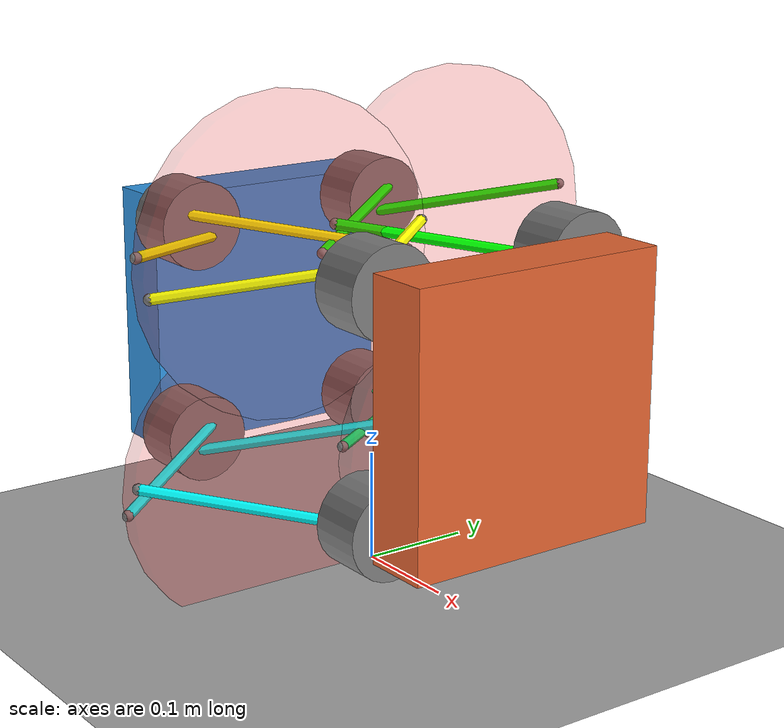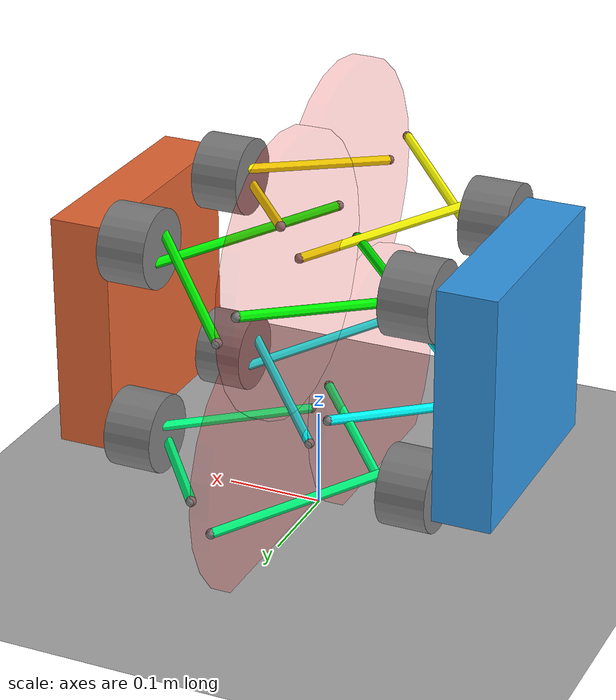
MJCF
<mujoco model="actuatorGroups">
    <compiler angle="radian" />
    <option timestep="0.001" actuatorgroupdisable="0 1 2" />

    <asset>
        <texture name="grid" type="2d" builtin="checker" width="300" height="300"
             rgb1="0.8 0.8 0.8" rgb2="0.5 0.5 0.5" mark="edge" markrgb="0.2 0.2 0.2"/>
        <material name="gridmat" texture="grid" texrepeat="5 5" reflectance="0"/>
    </asset>

    <worldbody>
        <light name="light_front" pos="0 -5 0" dir="0 1 0" directional="true" diffuse=".5 .5 .5"/>
        <light name="light_back" pos="0 5 0" dir="0 -1 0" directional="true" diffuse=".5 .5 .5"/>
        <light name="light_right" pos="5 0 0" dir="-1 0 0" directional="true" diffuse=".5 .5 .5"/>
        <light name="light_left" pos="-5 0 0" dir="1 0 0" directional="true" diffuse=".5 .5 .5"/>

        <geom name="floor" type="plane" size="10 10 0.1" material="gridmat"/>

        <!-- Block A -->
        <body name="block_a" pos="-0.2 0 0.2">
            <freejoint/>
            <inertial pos="0.04 0 0" mass="2.4" diaginertia="0.001 0.01 0.01"/>
            <geom type="box" size="0.03 0.12 0.12" mass="2.4" friction="0.2 0.02 0.01" rgba="0.2 0.6 0.9 1"/>

            <!-- Cylinder 1A -->
            <body name="cylinder1a" pos="0.03 0.10 0.10">
                <inertial pos="0.035 0 0" mass="0.1" diaginertia="0.0001 0.0002 0.0002"/>
                <joint name="cylinder1a_hinge" type="hinge" axis="1 0 0" limited="true" range="0 3.14"/>
                <geom name="cylinder1a_con" type="cylinder" fromto="0 0 0 0.05 0 0" size="0.04" />

                <site name="siteM1a1" pos="0.03 0.03 0.015"/>
                <site name="siteM1a2" pos="0.03 -0.03 -0.015"/>
            </body>

            <!-- Disc 1B -->
            <body name="disc1b" pos="0.175 0.10 0.10">
                <inertial pos="0.025 0 0" mass="0.1" diaginertia="0.0001 0.000225 0.000225"/>
                <geom name="disc1b_con" type="cylinder" fromto="0 0 0 0.02 0 0" size="0.14"  rgba="1 0 0 0.1" contype="0" conaffinity="0"/>
                <joint name="spring1b_hinge" type="hinge" axis="1 0 0"/>
                <site name="siteM1b1" pos="0 -0.135 -0.015"/>
                <site name="siteM1b2" pos="0 0.135 0.015"/>

                <site name="siteM1b3" pos="0.02 -0.135 0.015"/>
                <site name="siteM1b4" pos="0.02 0.135 -0.015"/>
            </body>

            <!-- Cylinder 2C-->
            <body name="cylinder2c" pos="0.03 -0.10 0.10">
                <inertial pos="0.035 0 0" mass="0.1" diaginertia="0.0001 0.0002 0.0002"/>
                <joint name="cylinder2c_hinge" type="hinge" axis="1 0 0"/>
                <geom name="cylinder2c_con" type="cylinder" fromto="0 0 0 0.05 0 0" size="0.04" />

                <site name="siteM2c1" pos="0.03 0.03 -0.015"/>
                <site name="siteM2c2" pos="0.03 -0.03 0.015"/>
            </body>

            <!-- Cylinder 3A -->
            <body name="cylinder3a" pos="0.03 -0.10 -0.10">
                <inertial pos="0.035 0 0" mass="0.1" diaginertia="0.0001 0.0002 0.0002"/>
                <joint name="cylinder3a_hinge" type="hinge" axis="1 0 0" limited="true" range="0 3.14"/>
                <geom name="cylinder3a_con" type="cylinder" fromto="0 0 0 0.05 0 0" size="0.04" />

                <site name="siteM3a1" pos="0.03 0.03 0.015"/>
                <site name="siteM3a2" pos="0.03 -0.03 -0.015"/>

            </body>

            <!-- Disc 3B-->
            <body name="disc3b" pos="0.175 -0.10 -0.10">
                <inertial pos="0.025 0 0" mass="0.1" diaginertia="0.0001 0.000225 0.000225"/>
                <geom name="disc3b_con" type="cylinder" fromto="0 0 0 0.02 0 0" size="0.14"  rgba="1 0 0 0.1" contype="0" conaffinity="0"/>
                <joint name="disc3b_hinge" type="hinge" axis="1 0 0"/>
                <site name="siteM3b1" pos="0.0 -0.135 -0.015"/>
                <site name="siteM3b2" pos="0.0 0.135 0.015"/>

                <site name="siteM3b3" pos="0.02 -0.135 0.015"/>
                <site name="siteM3b4" pos="0.02 0.135 -0.015"/>
            </body>

            <!-- Cylinder 4C-->
            <body name="cylinder4c" pos="0.03 0.10 -0.10">
                <inertial pos="0.035 0 0" mass="0.1" diaginertia="0.0001 0.0002 0.0002"/>
                <geom name="cylinder4c_con" type="cylinder" fromto="0 0 0 0.05 0 0" size="0.04" />
                <joint name="cylinder4c_hinge" type="hinge" axis="1 0 0"/>
                <site name="siteM4c1" pos="0.03 0.03 -0.015"/>
                <site name="siteM4c2" pos="0.03 -0.03 0.015"/>
            </body>

        </body>

        <!-- Block B -->
        <body name="block_b" pos="0.2 0 0.2">
            <freejoint/>
            <inertial pos="-0.04 0 0" mass="2.4" diaginertia="0.001 0.01 0.01"/>
            <geom type="box" size="0.03 0.12 0.12" mass="2.4" friction="0.2 0.02 0.01" rgba="0.9 0.4 0.2 1"/>

            <!-- Cylinder 1C -->
            <body name="cylinder1c" pos="-0.03 0.10 0.10">
                <inertial pos="-0.035 0 0" mass="0.1" diaginertia="0.0001 0.0002 0.0002"/>
                <geom name="cylinder1c_con" type="cylinder" fromto="0 0 0 -0.05 0 0" size="0.04" />
                <joint name="cylinder1c_hinge" type="hinge" axis="1 0 0"/>

                <site name="siteM1c1" pos="-0.03 0.03 -0.015"/>
                <site name="siteM1c2" pos="-0.03 -0.03 0.015"/>
            </body>

            <!-- Cylinder 3C-->
            <body name="cylinder_3c" pos="-0.03 -0.10 -0.10">
                <inertial pos="-0.035 0 0" mass="0.1" diaginertia="0.0001 0.0002 0.0002"/>
                <geom name="cylinder3c_con" type="cylinder" fromto="0 0 0 -0.05 0 0" size="0.04" />
                <joint name="cylinder3c_hinge" type="hinge" axis="1 0 0"/>

                <site name="siteM3c1" pos="-0.03 0.03 -0.015"/>
                <site name="siteM3c2" pos="-0.03 -0.03 0.015"/>
            </body>

            <!-- Cylinder 2A -->
            <body name="cylinder2a" pos="-0.03 -0.10 0.10">
                <inertial pos="-0.035 0 0" mass="0.1" diaginertia="0.0001 0.0002 0.0002"/>
                <joint name="cylinder2a_hinge" type="hinge" axis="1 0 0" limited="true" range="0 3.14"/>
                <geom name="cylinder2a_con" type="cylinder" fromto="0 0 0 -0.05 0 0" size="0.04" />

                <site name="siteM2a1" pos="-0.03 0.03 0.015"/>
                <site name="siteM2a2" pos="-0.03 -0.03 -0.015"/>
            </body>

            <!-- Disc 2B -->
            <body name="disc2b" pos="-0.175 -0.10 0.10">
                <inertial pos="-0.025 0 0" mass="0.1" diaginertia="0.0001 0.000225 0.000225"/>
                <geom name="disc2b_con" type="cylinder" fromto="0 0 0 -0.02 0 0" size="0.14"  rgba="1 0 0 0.1" contype="0" conaffinity="0"/>
                <joint name="disc2b_hinge" type="hinge" axis="1 0 0"/>
                <site name="siteM2b1" pos="0 -0.135 -0.015"/>
                <site name="siteM2b2" pos="0 0.135 0.015"/>

                <site name="siteM2b3" pos="-0.02 -0.135 0.015"/>
                <site name="siteM2b4" pos="-0.02 0.135 -0.015"/>
            </body>

            <!-- Cylinder4A -->
            <body name="cylinder4a" pos="-0.03 0.10 -0.10">
                <inertial pos="-0.035 0 0" mass="0.1" diaginertia="0.0001 0.0002 0.0002"/>
                <joint name="cylinder4a_hinge" type="hinge" axis="1 0 0" limited="true" range="0 3.14" />
                <geom name="cylinder4a_con" type="cylinder" fromto="0 0 0 -0.05 0 0" size="0.04" />

                <site name="siteM4a1" pos="-0.03 0.03 0.015"/>
                <site name="siteM4a2" pos="-0.03 -0.03 -0.015"/>
            </body>

            <!-- Disc4B -->
            <body name="disc4b" pos="-0.175 0.10 -0.10">
                <inertial pos="-0.025 0 0" mass="0.1" diaginertia="0.0001 0.000225 0.000225"/>
                <geom name="disc4b_con" type="cylinder" fromto="0 0 0 -0.02 0 0" size="0.14"  rgba="1 0 0 0.1" contype="0" conaffinity="0"/>
                <joint name="disc4b_hinge" type="hinge" axis="1 0 0"/>
                <site name="siteM4b1" pos="0 -0.135 -0.015"/>
                <site name="siteM4b2" pos="0 0.135 0.015"/>

                <site name="siteM4b3" pos="-0.02 -0.135 0.015"/>
                <site name="siteM4b4" pos="-0.02 0.135 -0.015"/>
            </body>

        </body>
    </worldbody>

    <contact>
        <!-- For friction, making the first 2 values different results in anisotropic tangential friction, last 2 results in anisotropic rolling friction -->
        <pair name="cylinder3a_ground" geom1="cylinder3a_con" geom2="floor" condim="3" friction="1 1 0.0005 0.0001 0.0001"/>
        <pair name="cylinder3c_ground" geom1="cylinder3c_con" geom2="floor" condim="3" friction="1 1 0.0005 0.0001 0.0001"/>
        <pair name="cylinder4a_ground" geom1="cylinder4a_con" geom2="floor" condim="3" friction="1 1 0.0005 0.0001 0.0001"/>
        <pair name="cylinder4c_ground" geom1="cylinder4c_con" geom2="floor" condim="3" friction="1 1 0.0005 0.0001 0.0001"/>
    </contact>

    <actuator>
        <motor name="spring1a_torque" group="0" joint="cylinder1a_hinge" gear="0.05" ctrlrange="-5 5"/>
        <motor name="spring2a_torque" group="0" joint="cylinder2a_hinge" gear="0.05" ctrlrange="-5 5"/>
        <motor name="spring3a_torque" group="0" joint="cylinder3a_hinge" gear="0.05" ctrlrange="-5 5"/>
        <motor name="spring4a_torque" group="0" joint="cylinder4a_hinge" gear="0.05" ctrlrange="-5 5"/>

        <motor name="spring1c_torque" group="0" joint="cylinder1c_hinge" gear="0.05" ctrlrange="-5 5"/>
        <motor name="spring2c_torque" group="0" joint="cylinder2c_hinge" gear="0.05" ctrlrange="-5 5"/>
        <motor name="spring3c_torque" group="0" joint="cylinder3c_hinge" gear="0.05" ctrlrange="-5 5"/>
        <motor name="spring4c_torque" group="0" joint="cylinder4c_hinge" gear="0.05" ctrlrange="-5 5"/>
    </actuator>
    <actuator>
        <position name="spring1a_motor" group="1" joint="cylinder1a_hinge" kp="1" ctrlrange="-3.14 3.14"/>
        <position name="spring2a_motor" group="1" joint="cylinder2a_hinge" kp="1" ctrlrange="-3.14 3.14"/>
        <position name="spring3a_motor" group="1" joint="cylinder3a_hinge" kp="1" ctrlrange="-3.14 3.14"/>
        <position name="spring4a_motor" group="1" joint="cylinder4a_hinge" kp="1" ctrlrange="-3.14 3.14"/>

        <position name="spring1c_motor" group="1" joint="cylinder1c_hinge" kp="1" ctrlrange="-3.14 3.14"/>
        <position name="spring2c_motor" group="1" joint="cylinder2c_hinge" kp="1" ctrlrange="-3.14 3.14"/>
        <position name="spring3c_motor" group="1" joint="cylinder3c_hinge" kp="1" ctrlrange="-3.14 3.14"/>
        <position name="spring4c_motor" group="1" joint="cylinder4c_hinge" kp="1" ctrlrange="-3.14 3.14"/>
    </actuator>
    <actuator>
        <velocity name="spring1a_vel" group="2" joint="cylinder1a_hinge" kv="0.1" ctrlrange="-3.14 3.14"/>
        <velocity name="spring2a_vel" group="2" joint="cylinder2a_hinge" kv="0.1" ctrlrange="-3.14 3.14"/>
        <velocity name="spring3a_vel" group="2" joint="cylinder3a_hinge" kv="0.1" ctrlrange="-3.14 3.14"/>
        <velocity name="spring4a_vel" group="2" joint="cylinder4a_hinge" kv="0.1" ctrlrange="-3.14 3.14"/>

        <velocity name="spring1c_vel" group="2" joint="cylinder1c_hinge" kv="0.1" ctrlrange="-3.14 3.14"/>
        <velocity name="spring2c_vel" group="2" joint="cylinder2c_hinge" kv="0.1" ctrlrange="-3.14 3.14"/>
        <velocity name="spring3c_vel" group="2" joint="cylinder3c_hinge" kv="0.1" ctrlrange="-3.14 3.14"/>
        <velocity name="spring4c_vel" group="2" joint="cylinder4c_hinge" kv="0.1" ctrlrange="-3.14 3.14"/>
    </actuator>

    <tendon>
        <spatial name="inter1a1" width="0.005" rgba="0 1 0 1" stiffness="3000" damping="15">
            <site site="siteM1a1"/>
            <site site="siteM1b1"/>
        </spatial>
        <spatial name="inter1a2" width="0.005" rgba="0 1 0 1" stiffness="3000" damping="15">
            <site site="siteM1a2"/>
            <site site="siteM1b2"/>
        </spatial>
        <spatial name="inter1b1" width="0.005" rgba="0 1 0 1" stiffness="3000" damping="15">
            <site site="siteM1b3"/>
            <site site="siteM1c1"/>
        </spatial>
            <spatial name="inter1b2" width="0.005" rgba="0 1 0 1" stiffness="3000" damping="15">
            <site site="siteM1b4"/>
            <site site="siteM1c2"/>
        </spatial>

        <spatial name="inter2a1" width="0.005" rgba="1 1 0 1" stiffness="3000" damping="15">
            <site site="siteM2a1"/>
            <site site="siteM2b1"/>
        </spatial>
        <spatial name="inter2a2" width="0.005" rgba="1 1 0 1" stiffness="3000" damping="15">
            <site site="siteM2a2"/>
            <site site="siteM2b2"/>
        </spatial>
        <spatial name="inter2b1" width="0.005" rgba="1 1 0 1" stiffness="3000" damping="15">
            <site site="siteM2b3"/>
            <site site="siteM2c1"/>
        </spatial>
        <spatial name="inter2b2" width="0.005" rgba="1 1 0 1" stiffness="3000" damping="15">
            <site site="siteM2b4"/>
            <site site="siteM2c2"/>
        </spatial>

        <spatial name="inter3a1" width="0.005" rgba="0 1 1 1" stiffness="3000" damping="15">
            <site site="siteM3a1"/>
            <site site="siteM3b1"/>
        </spatial>
        <spatial name="inter3a2" width="0.005" rgba="0 1 1 1" stiffness="3000" damping="15">
            <site site="siteM3a2"/>
            <site site="siteM3b2"/>
        </spatial>
        <spatial name="inter3b1" width="0.005" rgba="0 1 1 1" stiffness="3000" damping="15">
            <site site="siteM3b3"/>
            <site site="siteM3c1"/>
        </spatial>
        <spatial name="inter3b2" width="0.005" rgba="0 1 1 1" stiffness="3000" damping="15">
            <site site="siteM3b4"/>
            <site site="siteM3c2"/>
        </spatial>

        <spatial name="inter4a1" width="0.005" rgba="0 1 0.5 1" stiffness="3000" damping="15">
            <site site="siteM4a1"/>
            <site site="siteM4b1"/>
        </spatial>
        <spatial name="inter4a2" width="0.005" rgba="0 1 0.5 1" stiffness="3000" damping="15">
            <site site="siteM4a2"/>
            <site site="siteM4b2"/>
        </spatial>
        <spatial name="inter4b1" width="0.005" rgba="0 1 0.5 1" stiffness="3000" damping="15">
            <site site="siteM4b3"/>
            <site site="siteM4c1"/>
        </spatial>
        <spatial name="inter4b2" width="0.005" rgba="0 1 0.5 1" stiffness="3000" damping="15">
            <site site="siteM4b4"/>
            <site site="siteM4c2"/>
        </spatial>
    </tendon>
</mujoco>
